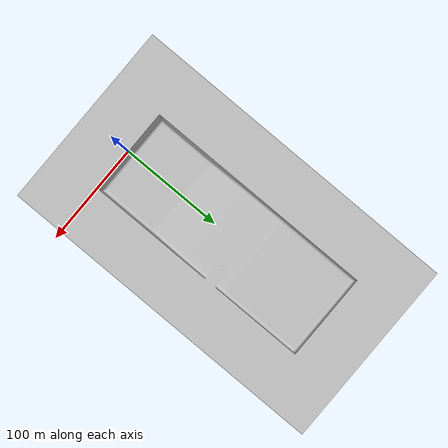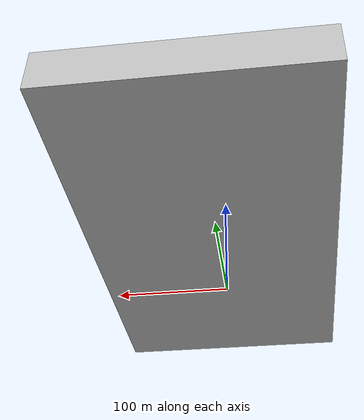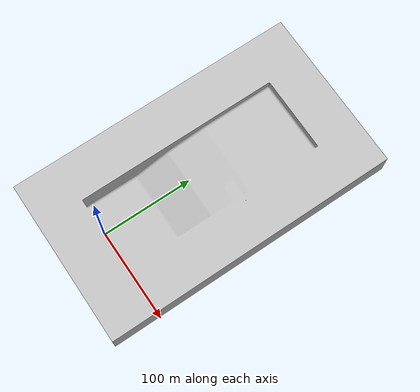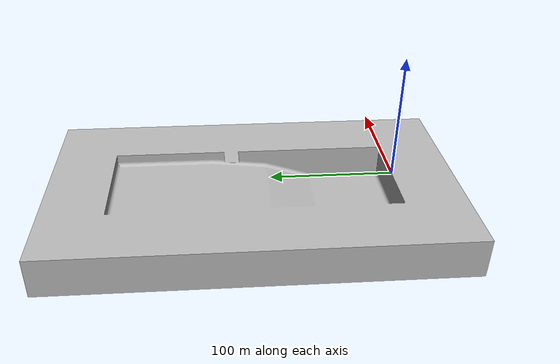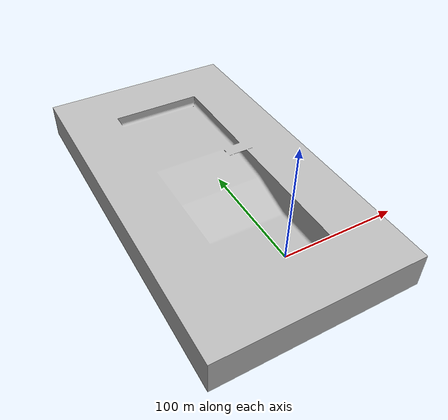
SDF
<sdf version="1.6">
  <model name="pool">
    <link name="link">
    <visual name='visual'>
      <geometry>
        <mesh>
          <uri>model://pool/meshes/pool.stl</uri>
	  <scale>0.01 0.01 0.01</scale>
        </mesh>
      </geometry>
    </visual>

    <collision name='collision'>
      <geometry>
        <mesh>
          <uri>model://pool/meshes/pool.stl</uri>
	        <scale>0.01 0.01 0.01</scale>
        </mesh>
      </geometry>
    </collision>

    </link>
  </model>
</sdf>
